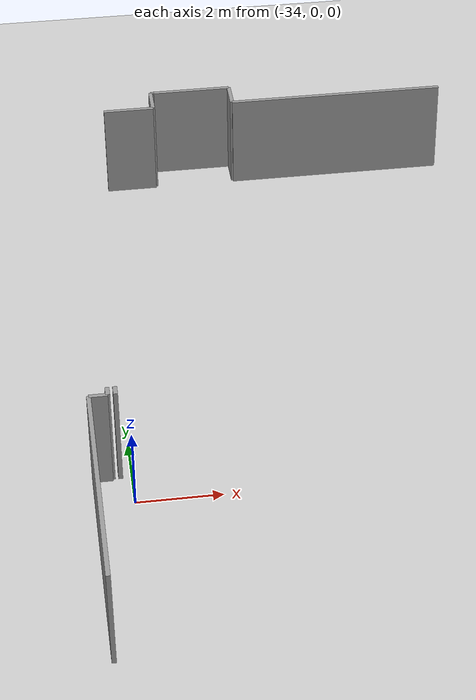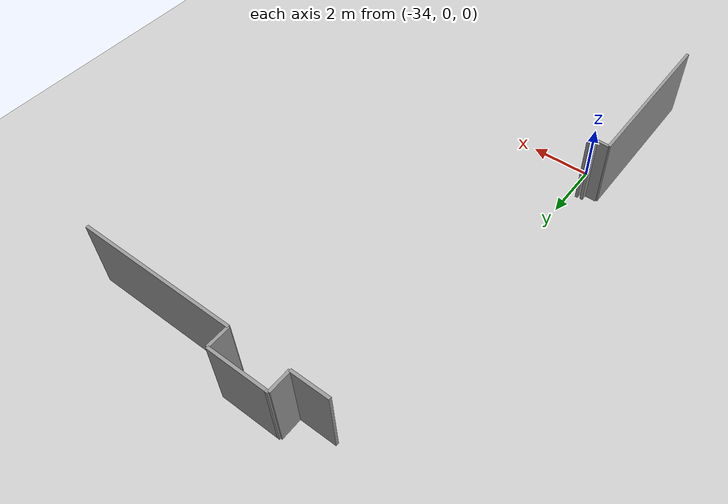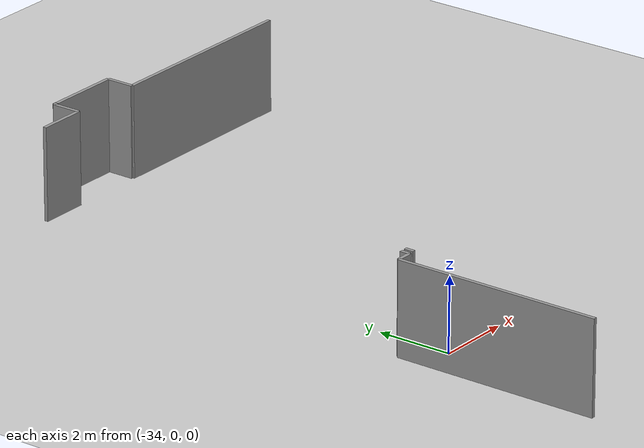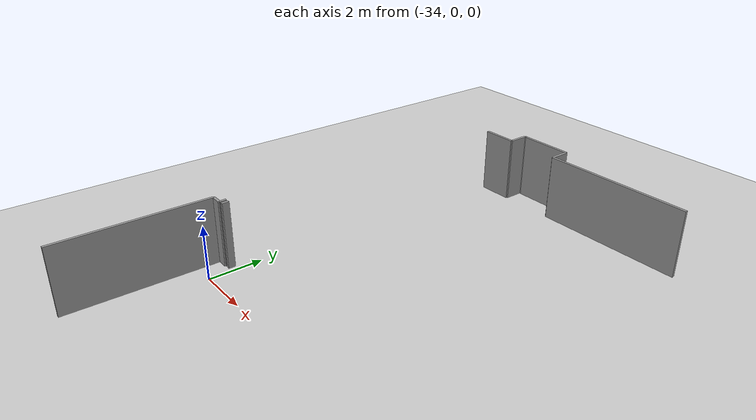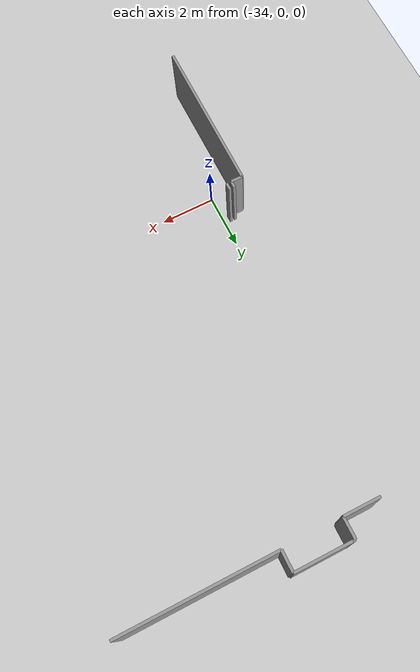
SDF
<sdf version="1.6">
 <world name="default">
  <model name="ground_plane">
   <static>1</static>
   <link name="link">
    <collision name="collision">
     <geometry><plane><normal>0 0 1</normal><size>100 100</size></plane></geometry>
     <surface><friction><ode><mu>100</mu><mu2>50</mu2></ode></friction></surface>
    </collision>
    <visual name="visual">
     <cast_shadows>0</cast_shadows>
     <geometry><plane><normal>0 0 1</normal><size>100 100</size></plane></geometry>
     <material>
      <script><uri>file://media/materials/scripts/gazebo.material</uri><name>Gazebo/Grey</name></script>
     </material>
    </visual>
   </link>
  </model>
  <model name="0510032261_A_40_1_103">
   <static>1</static>
   <link name="Wall_16">
    <collision name="Wall_16_Collision">
     <geometry><box><size>0.24917407878 0.1 2.5</size></box></geometry>
     <pose>0.12458703939 0 1.25 0 0 0</pose>
    </collision>
    <visual name="Wall_16_Visual">
     <pose>0.12458703939 0 1.25 0 0 0</pose>
     <geometry><box><size>0.24917407878 0.1 2.5</size></box></geometry>
     <material>
      <script><uri>file://media/materials/scripts/gazebo.material</uri><name>Gazebo/Grey</name></script>
      <ambient>1 1 1 1</ambient>
     </material>
    </visual>
    <pose>14.7219822109 -15.4337992376 0 0 0 -1.57079632679</pose>
   </link>
   <link name="Wall_17">
    <collision name="Wall_17_Collision">
     <geometry><box><size>0.419822109276 0.1 2.5</size></box></geometry>
     <pose>0.209911054638 0 1.25 0 0 0</pose>
    </collision>
    <visual name="Wall_17_Visual">
     <pose>0.209911054638 0 1.25 0 0 0</pose>
     <geometry><box><size>0.419822109276 0.1 2.5</size></box></geometry>
     <material>
      <script><uri>file://media/materials/scripts/gazebo.material</uri><name>Gazebo/Grey</name></script>
      <ambient>1 1 1 1</ambient>
     </material>
    </visual>
    <pose>14.7219822109 -15.6829733164 0 0 0 3.14159265359</pose>
   </link>
   <link name="Wall_18">
    <collision name="Wall_18_Collision">
     <geometry><box><size>5.55311308767 0.1 2.5</size></box></geometry>
     <pose>2.77655654384 0 1.25 0 0 0</pose>
    </collision>
    <visual name="Wall_18_Visual">
     <pose>2.77655654384 0 1.25 0 0 0</pose>
     <geometry><box><size>5.55311308767 0.1 2.5</size></box></geometry>
     <material>
      <script><uri>file://media/materials/scripts/gazebo.material</uri><name>Gazebo/Grey</name></script>
      <ambient>1 1 1 1</ambient>
     </material>
    </visual>
    <pose>14.3021601017 -15.6829733164 0 0 0 -1.57079632679</pose>
   </link>
   <link name="Wall_77">
    <collision name="Wall_77_Collision">
     <geometry><box><size>1.30673443456 0.1 2.5</size></box></geometry>
     <pose>0.653367217281 0 1.25 0 0 0</pose>
    </collision>
    <visual name="Wall_77_Visual">
     <pose>0.653367217281 0 1.25 0 0 0</pose>
     <geometry><box><size>1.30673443456 0.1 2.5</size></box></geometry>
     <material>
      <script><uri>file://media/materials/scripts/gazebo.material</uri><name>Gazebo/Grey</name></script>
      <ambient>1 1 1 1</ambient>
     </material>
    </visual>
    <pose>15.51613723 -4.0127064803 0 0 0 0.0</pose>
   </link>
   <link name="Wall_78">
    <collision name="Wall_78_Collision">
     <geometry><box><size>0.762642947903 0.1 2.5</size></box></geometry>
     <pose>0.381321473952 0 1.25 0 0 0</pose>
    </collision>
    <visual name="Wall_78_Visual">
     <pose>0.381321473952 0 1.25 0 0 0</pose>
     <geometry><box><size>0.762642947903 0.1 2.5</size></box></geometry>
     <material>
      <script><uri>file://media/materials/scripts/gazebo.material</uri><name>Gazebo/Grey</name></script>
      <ambient>1 1 1 1</ambient>
     </material>
    </visual>
    <pose>16.8228716645 -4.0127064803 0 0 0 1.57079632679</pose>
   </link>
   <link name="Wall_79">
    <collision name="Wall_79_Collision">
     <geometry><box><size>0.0908513341804 0.1 2.5</size></box></geometry>
     <pose>0.0454256670902 0 1.25 0 0 0</pose>
    </collision>
    <visual name="Wall_79_Visual">
     <pose>0.0454256670902 0 1.25 0 0 0</pose>
     <geometry><box><size>0.0908513341804 0.1 2.5</size></box></geometry>
     <material>
      <script><uri>file://media/materials/scripts/gazebo.material</uri><name>Gazebo/Grey</name></script>
      <ambient>1 1 1 1</ambient>
     </material>
    </visual>
    <pose>16.8228716645 -3.2500635324 0 0 0 0.0</pose>
   </link>
   <link name="Wall_80">
    <collision name="Wall_80_Collision">
     <geometry><box><size>2.02287166455 0.1 2.5</size></box></geometry>
     <pose>1.01143583227 0 1.25 0 0 0</pose>
    </collision>
    <visual name="Wall_80_Visual">
     <pose>1.01143583227 0 1.25 0 0 0</pose>
     <geometry><box><size>2.02287166455 0.1 2.5</size></box></geometry>
     <material>
      <script><uri>file://media/materials/scripts/gazebo.material</uri><name>Gazebo/Grey</name></script>
      <ambient>1 1 1 1</ambient>
     </material>
    </visual>
    <pose>16.9137229987 -3.2500635324 0 0 0 0.0</pose>
   </link>
   <link name="Wall_81">
    <collision name="Wall_81_Collision">
     <geometry><box><size>0.756289707751 0.1 2.5</size></box></geometry>
     <pose>0.378144853875 0 1.25 0 0 0</pose>
    </collision>
    <visual name="Wall_81_Visual">
     <pose>0.378144853875 0 1.25 0 0 0</pose>
     <geometry><box><size>0.756289707751 0.1 2.5</size></box></geometry>
     <material>
      <script><uri>file://media/materials/scripts/gazebo.material</uri><name>Gazebo/Grey</name></script>
      <ambient>1 1 1 1</ambient>
     </material>
    </visual>
    <pose>18.9365946633 -3.2500635324 0 0 0 -1.57079632679</pose>
   </link>
   <link name="Wall_82">
    <collision name="Wall_82_Collision">
     <geometry><box><size>5.59707750953 0.1 2.5</size></box></geometry>
     <pose>2.79853875476 0 1.25 0 0 0</pose>
    </collision>
    <visual name="Wall_82_Visual">
     <pose>2.79853875476 0 1.25 0 0 0</pose>
     <geometry><box><size>5.59707750953 0.1 2.5</size></box></geometry>
     <material>
      <script><uri>file://media/materials/scripts/gazebo.material</uri><name>Gazebo/Grey</name></script>
      <ambient>1 1 1 1</ambient>
     </material>
    </visual>
    <pose>18.9365946633 -4.00635324015 0 0 0 0.0</pose>
   </link>
   <link name="Wall_132">
    <collision name="Wall_132_Collision">
     <geometry><box><size>0.258831003812 0.1 2.5</size></box></geometry>
     <pose>0.129415501906 0 1.25 0 0 0</pose>
    </collision>
    <visual name="Wall_132_Visual">
     <pose>0.129415501906 0 1.25 0 0 0</pose>
     <geometry><box><size>0.258831003812 0.1 2.5</size></box></geometry>
     <material>
      <script><uri>file://media/materials/scripts/gazebo.material</uri><name>Gazebo/Grey</name></script>
      <ambient>1 1 1 1</ambient>
     </material>
    </visual>
    <pose>14.8931385006 -15.685133418 0 0 0 1.57079632679</pose>
   </link>
   <pose>-49.15 16.5314485388 0 0 0 0</pose>
  </model>
 </world>
</sdf>
